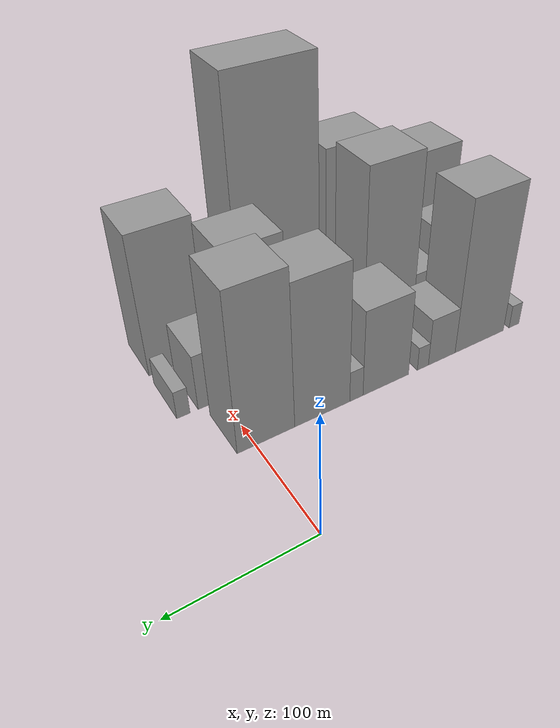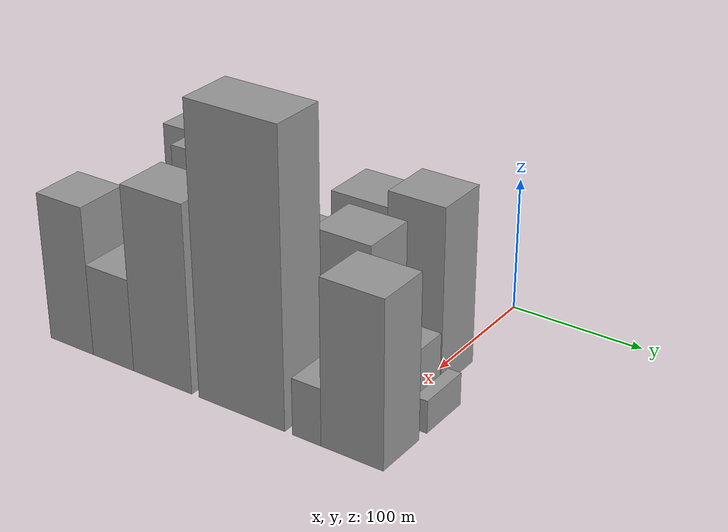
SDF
<sdf version="1.6">
 <world name="default">
  <model name="building_10">
   <static>1</static>
   <pose>100.0000 -225.4781 0 0.000000 0.000000 0.000000</pose>
   <link name="link">
    <pose>0 0 10.50 0 0 0</pose>
    <collision name="collision"><geometry><box><size>40.0000 10.0991 21.0000</size></box></geometry></collision>
    <visual name="visual">
     <cast_shadows>0</cast_shadows>
     <geometry><box><size>40.0000 10.0991 21.0000</size></box></geometry>
     <material>
      <script>
       <uri>model://grey_wall/materials/scripts</uri>
       <uri>model://grey_wall/materials/textures</uri>
       <name>vrc/grey_wall</name>
      </script>
     </material>
    </visual>
   </link>
  </model>
  <model name="building_11">
   <static>1</static>
   <pose>100.0000 -190.6155 0 0.000000 0.000000 0.000000</pose>
   <link name="link">
    <pose>0 0 66.00 0 0 0</pose>
    <collision name="collision"><geometry><box><size>40.0000 47.6261 132.0000</size></box></geometry></collision>
    <visual name="visual">
     <cast_shadows>0</cast_shadows>
     <geometry><box><size>40.0000 47.6261 132.0000</size></box></geometry>
     <material>
      <script>
       <uri>model://grey_wall/materials/scripts</uri>
       <uri>model://grey_wall/materials/textures</uri>
       <name>vrc/grey_wall</name>
      </script>
     </material>
    </visual>
   </link>
  </model>
  <model name="building_12">
   <static>1</static>
   <pose>100.0000 -154.3334 0 0.000000 0.000000 0.000000</pose>
   <link name="link">
    <pose>0 0 21.00 0 0 0</pose>
    <collision name="collision"><geometry><box><size>40.0000 24.9380 42.0000</size></box></geometry></collision>
    <visual name="visual">
     <cast_shadows>0</cast_shadows>
     <geometry><box><size>40.0000 24.9380 42.0000</size></box></geometry>
     <material>
      <script>
       <uri>model://grey_wall/materials/scripts</uri>
       <uri>model://grey_wall/materials/textures</uri>
       <name>vrc/grey_wall</name>
      </script>
     </material>
    </visual>
   </link>
  </model>
  <model name="building_13">
   <static>1</static>
   <pose>100.0000 -136.8258 0 0.000000 0.000000 0.000000</pose>
   <link name="link">
    <pose>0 0 10.50 0 0 0</pose>
    <collision name="collision"><geometry><box><size>40.0000 10.0771 21.0000</size></box></geometry></collision>
    <visual name="visual">
     <cast_shadows>0</cast_shadows>
     <geometry><box><size>40.0000 10.0771 21.0000</size></box></geometry>
     <material>
      <script>
       <uri>model://grey_wall/materials/scripts</uri>
       <uri>model://grey_wall/materials/textures</uri>
       <name>vrc/grey_wall</name>
      </script>
     </material>
    </visual>
   </link>
  </model>
  <model name="building_14">
   <static>1</static>
   <pose>100.0000 -104.0365 0 0.000000 0.000000 0.000000</pose>
   <link name="link">
    <pose>0 0 37.50 0 0 0</pose>
    <collision name="collision"><geometry><box><size>40.0000 39.5016 75.0000</size></box></geometry></collision>
    <visual name="visual">
     <cast_shadows>0</cast_shadows>
     <geometry><box><size>40.0000 39.5016 75.0000</size></box></geometry>
     <material>
      <script>
       <uri>model://grey_wall/materials/scripts</uri>
       <uri>model://grey_wall/materials/textures</uri>
       <name>vrc/grey_wall</name>
      </script>
     </material>
    </visual>
   </link>
  </model>
  <model name="building_15">
   <static>1</static>
   <pose>100.0000 -78.7657 0 0.000000 0.000000 0.000000</pose>
   <link name="link">
    <pose>0 0 13.50 0 0 0</pose>
    <collision name="collision"><geometry><box><size>40.0000 11.0400 27.0000</size></box></geometry></collision>
    <visual name="visual">
     <cast_shadows>0</cast_shadows>
     <geometry><box><size>40.0000 11.0400 27.0000</size></box></geometry>
     <material>
      <script>
       <uri>model://grey_wall/materials/scripts</uri>
       <uri>model://grey_wall/materials/textures</uri>
       <name>vrc/grey_wall</name>
      </script>
     </material>
    </visual>
   </link>
  </model>
  <model name="building_16">
   <static>1</static>
   <pose>100.0000 -51.2539 0 0.000000 0.000000 0.000000</pose>
   <link name="link">
    <pose>0 0 60.00 0 0 0</pose>
    <collision name="collision"><geometry><box><size>40.0000 43.9836 120.0000</size></box></geometry></collision>
    <visual name="visual">
     <cast_shadows>0</cast_shadows>
     <geometry><box><size>40.0000 43.9836 120.0000</size></box></geometry>
     <material>
      <script>
       <uri>model://grey_wall/materials/scripts</uri>
       <uri>model://grey_wall/materials/textures</uri>
       <name>vrc/grey_wall</name>
      </script>
     </material>
    </visual>
   </link>
  </model>
  <model name="building_17">
   <static>1</static>
   <pose>100.0000 -7.7850 0 0.000000 0.000000 0.000000</pose>
   <link name="link">
    <pose>0 0 66.00 0 0 0</pose>
    <collision name="collision"><geometry><box><size>40.0000 42.9540 132.0000</size></box></geometry></collision>
    <visual name="visual">
     <cast_shadows>0</cast_shadows>
     <geometry><box><size>40.0000 42.9540 132.0000</size></box></geometry>
     <material>
      <script>
       <uri>model://grey_wall/materials/scripts</uri>
       <uri>model://grey_wall/materials/textures</uri>
       <name>vrc/grey_wall</name>
      </script>
     </material>
    </visual>
   </link>
  </model>
  <model name="building_40">
   <static>1</static>
   <pose>149.0000 -231.0600 0 0.000000 0.000000 0.000000</pose>
   <link name="link">
    <pose>0 0 7.50 0 0 0</pose>
    <collision name="collision"><geometry><box><size>40.0000 7.1269 15.0000</size></box></geometry></collision>
    <visual name="visual">
     <cast_shadows>0</cast_shadows>
     <geometry><box><size>40.0000 7.1269 15.0000</size></box></geometry>
     <material>
      <script>
       <uri>model://grey_wall/materials/scripts</uri>
       <uri>model://grey_wall/materials/textures</uri>
       <name>vrc/grey_wall</name>
      </script>
     </material>
    </visual>
   </link>
  </model>
  <model name="building_41">
   <static>1</static>
   <pose>149.0000 -208.1392 0 0.000000 0.000000 0.000000</pose>
   <link name="link">
    <pose>0 0 34.50 0 0 0</pose>
    <collision name="collision"><geometry><box><size>40.0000 38.7147 69.0000</size></box></geometry></collision>
    <visual name="visual">
     <cast_shadows>0</cast_shadows>
     <geometry><box><size>40.0000 38.7147 69.0000</size></box></geometry>
     <material>
      <script>
       <uri>model://grey_wall/materials/scripts</uri>
       <uri>model://grey_wall/materials/textures</uri>
       <name>vrc/grey_wall</name>
      </script>
     </material>
    </visual>
   </link>
  </model>
  <model name="building_42">
   <static>1</static>
   <pose>149.0000 -176.8376 0 0.000000 0.000000 0.000000</pose>
   <link name="link">
    <pose>0 0 21.00 0 0 0</pose>
    <collision name="collision"><geometry><box><size>40.0000 23.8886 42.0000</size></box></geometry></collision>
    <visual name="visual">
     <cast_shadows>0</cast_shadows>
     <geometry><box><size>40.0000 23.8886 42.0000</size></box></geometry>
     <material>
      <script>
       <uri>model://grey_wall/materials/scripts</uri>
       <uri>model://grey_wall/materials/textures</uri>
       <name>vrc/grey_wall</name>
      </script>
     </material>
    </visual>
   </link>
  </model>
  <model name="building_43">
   <static>1</static>
   <pose>149.0000 -141.6189 0 0.000000 0.000000 0.000000</pose>
   <link name="link">
    <pose>0 0 73.50 0 0 0</pose>
    <collision name="collision"><geometry><box><size>40.0000 46.5488 147.0000</size></box></geometry></collision>
    <visual name="visual">
     <cast_shadows>0</cast_shadows>
     <geometry><box><size>40.0000 46.5488 147.0000</size></box></geometry>
     <material>
      <script>
       <uri>model://grey_wall/materials/scripts</uri>
       <uri>model://grey_wall/materials/textures</uri>
       <name>vrc/grey_wall</name>
      </script>
     </material>
    </visual>
   </link>
  </model>
  <model name="building_44">
   <static>1</static>
   <pose>149.0000 -98.3548 0 0.000000 0.000000 0.000000</pose>
   <link name="link">
    <pose>0 0 25.50 0 0 0</pose>
    <collision name="collision"><geometry><box><size>40.0000 29.9796 51.0000</size></box></geometry></collision>
    <visual name="visual">
     <cast_shadows>0</cast_shadows>
     <geometry><box><size>40.0000 29.9796 51.0000</size></box></geometry>
     <material>
      <script>
       <uri>model://grey_wall/materials/scripts</uri>
       <uri>model://grey_wall/materials/textures</uri>
       <name>vrc/grey_wall</name>
      </script>
     </material>
    </visual>
   </link>
  </model>
  <model name="building_45">
   <static>1</static>
   <pose>149.0000 -78.6305 0 0.000000 0.000000 0.000000</pose>
   <link name="link">
    <pose>0 0 10.50 0 0 0</pose>
    <collision name="collision"><geometry><box><size>40.0000 9.4690 21.0000</size></box></geometry></collision>
    <visual name="visual">
     <cast_shadows>0</cast_shadows>
     <geometry><box><size>40.0000 9.4690 21.0000</size></box></geometry>
     <material>
      <script>
       <uri>model://grey_wall/materials/scripts</uri>
       <uri>model://grey_wall/materials/textures</uri>
       <name>vrc/grey_wall</name>
      </script>
     </material>
    </visual>
   </link>
  </model>
  <model name="building_46">
   <static>1</static>
   <pose>149.0000 -65.3582 0 0.000000 0.000000 0.000000</pose>
   <link name="link">
    <pose>0 0 15.00 0 0 0</pose>
    <collision name="collision"><geometry><box><size>40.0000 17.0755 30.0000</size></box></geometry></collision>
    <visual name="visual">
     <cast_shadows>0</cast_shadows>
     <geometry><box><size>40.0000 17.0755 30.0000</size></box></geometry>
     <material>
      <script>
       <uri>model://grey_wall/materials/scripts</uri>
       <uri>model://grey_wall/materials/textures</uri>
       <name>vrc/grey_wall</name>
      </script>
     </material>
    </visual>
   </link>
  </model>
  <model name="building_47">
   <static>1</static>
   <pose>149.0000 -30.7471 0 0.000000 0.000000 0.000000</pose>
   <link name="link">
    <pose>0 0 60.00 0 0 0</pose>
    <collision name="collision"><geometry><box><size>40.0000 44.1467 120.0000</size></box></geometry></collision>
    <visual name="visual">
     <cast_shadows>0</cast_shadows>
     <geometry><box><size>40.0000 44.1467 120.0000</size></box></geometry>
     <material>
      <script>
       <uri>model://grey_wall/materials/scripts</uri>
       <uri>model://grey_wall/materials/textures</uri>
       <name>vrc/grey_wall</name>
      </script>
     </material>
    </visual>
   </link>
  </model>
  <model name="building_48">
   <static>1</static>
   <pose>149.0000 4.8125 0 0.000000 0.000000 0.000000</pose>
   <link name="link">
    <pose>0 0 24.00 0 0 0</pose>
    <collision name="collision"><geometry><box><size>40.0000 26.9725 48.0000</size></box></geometry></collision>
    <visual name="visual">
     <cast_shadows>0</cast_shadows>
     <geometry><box><size>40.0000 26.9725 48.0000</size></box></geometry>
     <material>
      <script>
       <uri>model://grey_wall/materials/scripts</uri>
       <uri>model://grey_wall/materials/textures</uri>
       <name>vrc/grey_wall</name>
      </script>
     </material>
    </visual>
   </link>
  </model>
  <model name="building_49">
   <static>1</static>
   <pose>149.0000 29.1907 0 0.000000 0.000000 0.000000</pose>
   <link name="link">
    <pose>0 0 12.00 0 0 0</pose>
    <collision name="collision"><geometry><box><size>40.0000 9.7840 24.0000</size></box></geometry></collision>
    <visual name="visual">
     <cast_shadows>0</cast_shadows>
     <geometry><box><size>40.0000 9.7840 24.0000</size></box></geometry>
     <material>
      <script>
       <uri>model://grey_wall/materials/scripts</uri>
       <uri>model://grey_wall/materials/textures</uri>
       <name>vrc/grey_wall</name>
      </script>
     </material>
    </visual>
   </link>
  </model>
  <model name="building_77">
   <static>1</static>
   <pose>198.0000 -221.8352 0 0.000000 0.000000 0.000000</pose>
   <link name="link">
    <pose>0 0 55.50 0 0 0</pose>
    <collision name="collision"><geometry><box><size>40.0000 39.2256 111.0000</size></box></geometry></collision>
    <visual name="visual">
     <cast_shadows>0</cast_shadows>
     <geometry><box><size>40.0000 39.2256 111.0000</size></box></geometry>
     <material>
      <script>
       <uri>model://grey_wall/materials/scripts</uri>
       <uri>model://grey_wall/materials/textures</uri>
       <name>vrc/grey_wall</name>
      </script>
     </material>
    </visual>
   </link>
  </model>
  <model name="building_78">
   <static>1</static>
   <pose>198.0000 -184.1178 0 0.000000 0.000000 0.000000</pose>
   <link name="link">
    <pose>0 0 34.50 0 0 0</pose>
    <collision name="collision"><geometry><box><size>40.0000 36.2093 69.0000</size></box></geometry></collision>
    <visual name="visual">
     <cast_shadows>0</cast_shadows>
     <geometry><box><size>40.0000 36.2093 69.0000</size></box></geometry>
     <material>
      <script>
       <uri>model://grey_wall/materials/scripts</uri>
       <uri>model://grey_wall/materials/textures</uri>
       <name>vrc/grey_wall</name>
      </script>
     </material>
    </visual>
   </link>
  </model>
  <model name="building_79">
   <static>1</static>
   <pose>198.0000 -140.9857 0 0.000000 0.000000 0.000000</pose>
   <link name="link">
    <pose>0 0 69.00 0 0 0</pose>
    <collision name="collision"><geometry><box><size>40.0000 50.0550 138.0000</size></box></geometry></collision>
    <visual name="visual">
     <cast_shadows>0</cast_shadows>
     <geometry><box><size>40.0000 50.0550 138.0000</size></box></geometry>
     <material>
      <script>
       <uri>model://grey_wall/materials/scripts</uri>
       <uri>model://grey_wall/materials/textures</uri>
       <name>vrc/grey_wall</name>
      </script>
     </material>
    </visual>
   </link>
  </model>
  <model name="building_80">
   <static>1</static>
   <pose>198.0000 -75.1956 0 0.000000 0.000000 0.000000</pose>
   <link name="link">
    <pose>0 0 105.00 0 0 0</pose>
    <collision name="collision"><geometry><box><size>40.0000 69.5251 210.0000</size></box></geometry></collision>
    <visual name="visual">
     <cast_shadows>0</cast_shadows>
     <geometry><box><size>40.0000 69.5251 210.0000</size></box></geometry>
     <material>
      <script>
       <uri>model://grey_wall/materials/scripts</uri>
       <uri>model://grey_wall/materials/textures</uri>
       <name>vrc/grey_wall</name>
      </script>
     </material>
    </visual>
   </link>
  </model>
  <model name="building_81">
   <static>1</static>
   <pose>198.0000 -23.4615 0 0.000000 0.000000 0.000000</pose>
   <link name="link">
    <pose>0 0 21.00 0 0 0</pose>
    <collision name="collision"><geometry><box><size>40.0000 21.9432 42.0000</size></box></geometry></collision>
    <visual name="visual">
     <cast_shadows>0</cast_shadows>
     <geometry><box><size>40.0000 21.9432 42.0000</size></box></geometry>
     <material>
      <script>
       <uri>model://grey_wall/materials/scripts</uri>
       <uri>model://grey_wall/materials/textures</uri>
       <name>vrc/grey_wall</name>
      </script>
     </material>
    </visual>
   </link>
  </model>
  <model name="building_82">
   <static>1</static>
   <pose>198.0000 10.7537 0 0.000000 0.000000 0.000000</pose>
   <link name="link">
    <pose>0 0 60.00 0 0 0</pose>
    <collision name="collision"><geometry><box><size>40.0000 46.4870 120.0000</size></box></geometry></collision>
    <visual name="visual">
     <cast_shadows>0</cast_shadows>
     <geometry><box><size>40.0000 46.4870 120.0000</size></box></geometry>
     <material>
      <script>
       <uri>model://grey_wall/materials/scripts</uri>
       <uri>model://grey_wall/materials/textures</uri>
       <name>vrc/grey_wall</name>
      </script>
     </material>
    </visual>
   </link>
  </model>
 </world>
</sdf>
